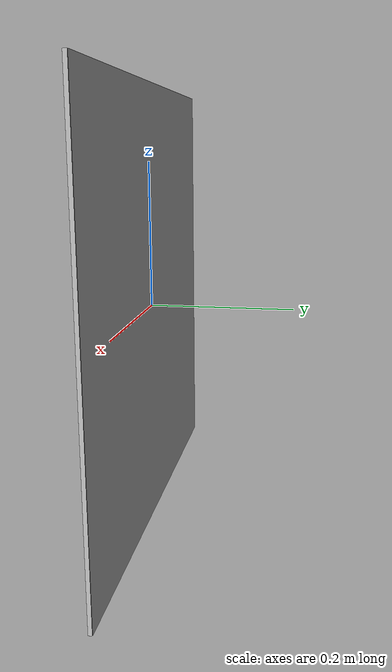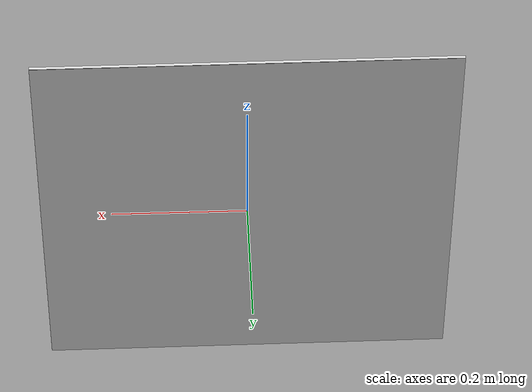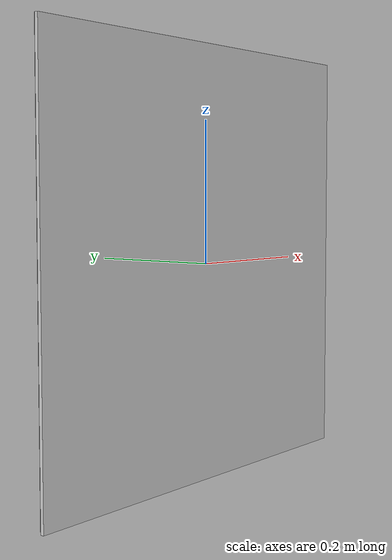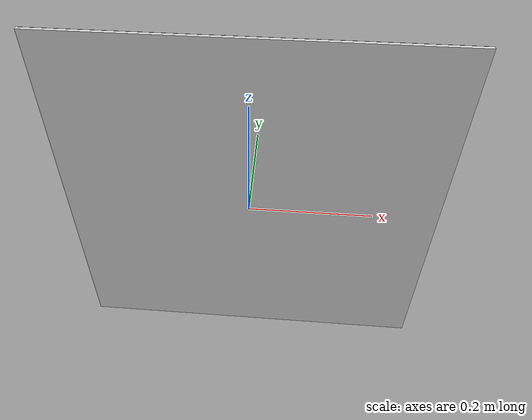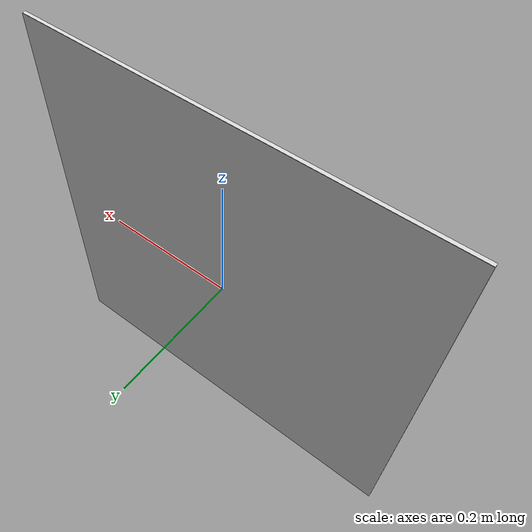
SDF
<?xml version="1.0"?>
<sdf version="1.9">
  <model name="roboboat_banner_2">
    <static>true</static>
    <link name="link">
      <collision name="collision">
        <geometry>
          <box><size>0.6096 0.005 0.6096</size></box>
        </geometry>
      </collision>
      <visual name="board">
        <geometry>
          <box><size>0.6096 0.005 0.6096</size></box>
        </geometry>
        <material>
          <ambient>0.8276 0.8276 0.8276 1</ambient>
          <diffuse>0.8276 0.8276 0.8276 1</diffuse>
          <specular>0.1 0.1 0.1 1</specular>
        </material>
      </visual>
      <visual name="number">
        <pose>0 0.003 0 0 0 3.1416</pose>
        <geometry>
          <mesh>
            <uri>model://roboboat_banner_2/meshes/banner_2.dae</uri>
          </mesh>
        </geometry>
      </visual>
    </link>
    <plugin filename="gz-sim-label-system" name="gz::sim::systems::Label">
      <label>52</label>
    </plugin>
  </model>
</sdf>
